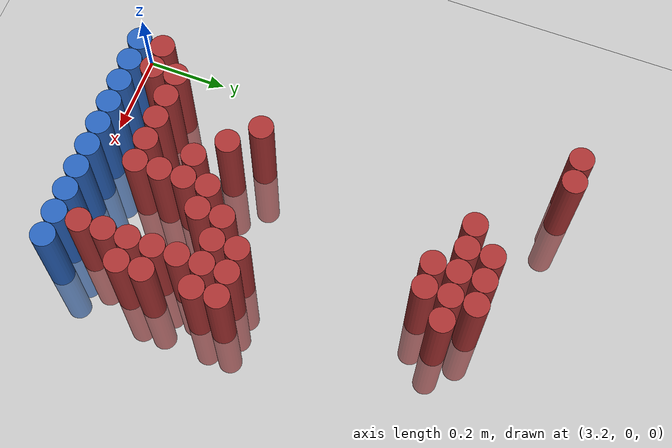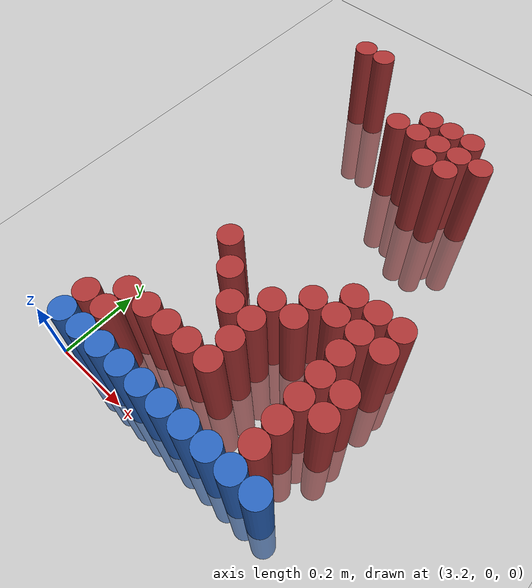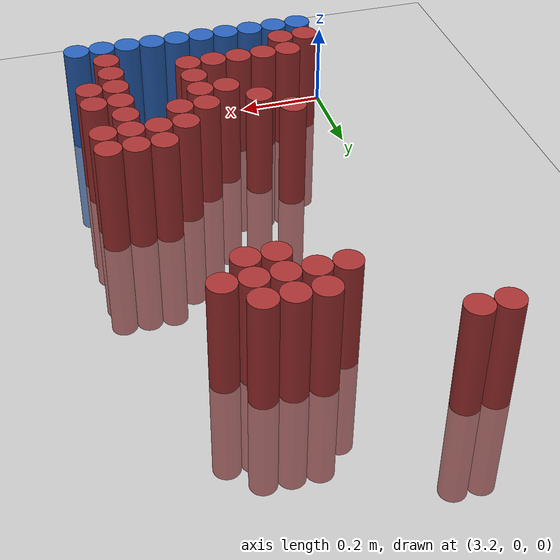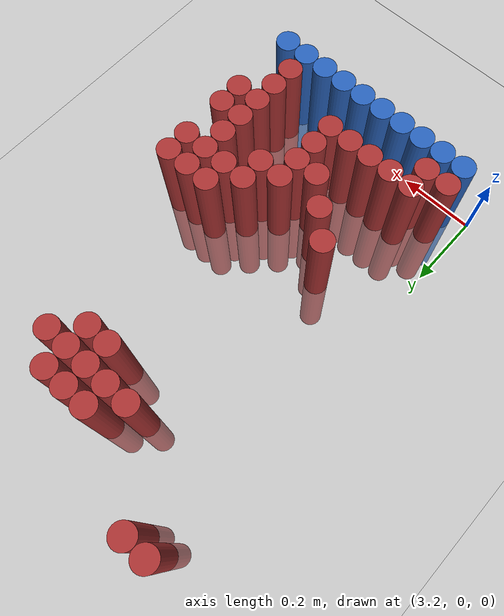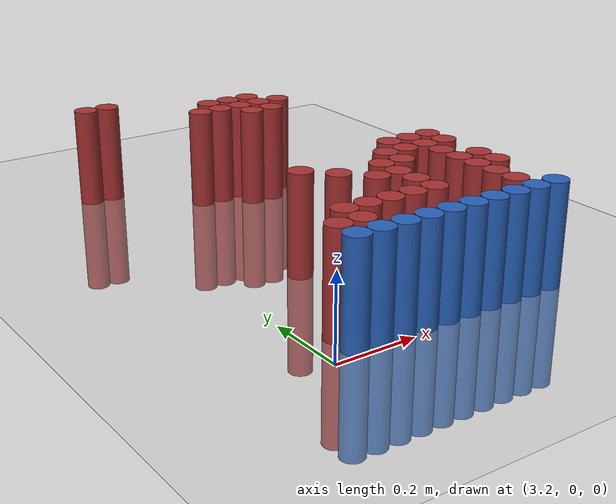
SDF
<sdf version="1.6">
 <world name="default">
  <model name="ground_plane">
   <static>1</static>
   <link name="link">
    <collision name="collision">
     <geometry><plane><normal>0 0 1</normal><size>100 100</size></plane></geometry>
     <surface><friction><ode><mu>100</mu><mu2>50</mu2></ode></friction></surface>
    </collision>
    <visual name="visual">
     <cast_shadows>0</cast_shadows>
     <geometry><plane><normal>0 0 1</normal><size>100 100</size></plane></geometry>
     <material>
      <script><uri>file://media/materials/scripts/gazebo.material</uri><name>Gazebo/Grey</name></script>
     </material>
    </visual>
   </link>
  </model>
  <model name="unit_cylinder_229">
   <static>1</static>
   <pose>3.210000 1.110000 0.000000 0.000000 0.000000 0.000000</pose>
   <link name="link">
    <inertial>
     <mass>1</mass>
     <inertia><ixx>0.145833</ixx><ixy>0</ixy><ixz>0</ixz><iyy>0.145833</iyy><iyz>0</iyz><izz>0.125</izz></inertia>
    </inertial>
    <collision name="collision">
     <geometry><cylinder><radius>0.030000</radius><length>0.5</length></cylinder></geometry>
    </collision>
    <visual name="visual">
     <geometry><cylinder><radius>0.030000</radius><length>0.5</length></cylinder></geometry>
     <material>
      <ambient>0.648000 0.192000 0.192000 1</ambient>
      <diffuse>0.648000 0.192000 0.192000 1</diffuse>
     </material>
     <material>
      <script><name>Gazebo/Grey</name><uri>file://media/materials/scripts/gazebo.material</uri></script>
     </material>
    </visual>
   </link>
  </model>
  <model name="unit_cylinder_230">
   <static>1</static>
   <pose>3.270000 1.110000 0.000000 0.000000 0.000000 0.000000</pose>
   <link name="link">
    <inertial>
     <mass>1</mass>
     <inertia><ixx>0.145833</ixx><ixy>0</ixy><ixz>0</ixz><iyy>0.145833</iyy><iyz>0</iyz><izz>0.125</izz></inertia>
    </inertial>
    <collision name="collision">
     <geometry><cylinder><radius>0.030000</radius><length>0.5</length></cylinder></geometry>
    </collision>
    <visual name="visual">
     <geometry><cylinder><radius>0.030000</radius><length>0.5</length></cylinder></geometry>
     <material>
      <ambient>0.648000 0.192000 0.192000 1</ambient>
      <diffuse>0.648000 0.192000 0.192000 1</diffuse>
     </material>
     <material>
      <script><name>Gazebo/Grey</name><uri>file://media/materials/scripts/gazebo.material</uri></script>
     </material>
    </visual>
   </link>
  </model>
  <model name="unit_cylinder_239">
   <static>1</static>
   <pose>3.510000 0.990000 0.000000 0.000000 0.000000 0.000000</pose>
   <link name="link">
    <inertial>
     <mass>1</mass>
     <inertia><ixx>0.145833</ixx><ixy>0</ixy><ixz>0</ixz><iyy>0.145833</iyy><iyz>0</iyz><izz>0.125</izz></inertia>
    </inertial>
    <collision name="collision">
     <geometry><cylinder><radius>0.030000</radius><length>0.5</length></cylinder></geometry>
    </collision>
    <visual name="visual">
     <geometry><cylinder><radius>0.030000</radius><length>0.5</length></cylinder></geometry>
     <material>
      <ambient>0.648000 0.192000 0.192000 1</ambient>
      <diffuse>0.648000 0.192000 0.192000 1</diffuse>
     </material>
     <material>
      <script><name>Gazebo/Grey</name><uri>file://media/materials/scripts/gazebo.material</uri></script>
     </material>
    </visual>
   </link>
  </model>
  <model name="unit_cylinder_240">
   <static>1</static>
   <pose>3.570000 0.990000 0.000000 0.000000 0.000000 0.000000</pose>
   <link name="link">
    <inertial>
     <mass>1</mass>
     <inertia><ixx>0.145833</ixx><ixy>0</ixy><ixz>0</ixz><iyy>0.145833</iyy><iyz>0</iyz><izz>0.125</izz></inertia>
    </inertial>
    <collision name="collision">
     <geometry><cylinder><radius>0.030000</radius><length>0.5</length></cylinder></geometry>
    </collision>
    <visual name="visual">
     <geometry><cylinder><radius>0.030000</radius><length>0.5</length></cylinder></geometry>
     <material>
      <ambient>0.648000 0.192000 0.192000 1</ambient>
      <diffuse>0.648000 0.192000 0.192000 1</diffuse>
     </material>
     <material>
      <script><name>Gazebo/Grey</name><uri>file://media/materials/scripts/gazebo.material</uri></script>
     </material>
    </visual>
   </link>
  </model>
  <model name="unit_cylinder_241">
   <static>1</static>
   <pose>3.630000 0.990000 0.000000 0.000000 0.000000 0.000000</pose>
   <link name="link">
    <inertial>
     <mass>1</mass>
     <inertia><ixx>0.145833</ixx><ixy>0</ixy><ixz>0</ixz><iyy>0.145833</iyy><iyz>0</iyz><izz>0.125</izz></inertia>
    </inertial>
    <collision name="collision">
     <geometry><cylinder><radius>0.030000</radius><length>0.5</length></cylinder></geometry>
    </collision>
    <visual name="visual">
     <geometry><cylinder><radius>0.030000</radius><length>0.5</length></cylinder></geometry>
     <material>
      <ambient>0.648000 0.192000 0.192000 1</ambient>
      <diffuse>0.648000 0.192000 0.192000 1</diffuse>
     </material>
     <material>
      <script><name>Gazebo/Grey</name><uri>file://media/materials/scripts/gazebo.material</uri></script>
     </material>
    </visual>
   </link>
  </model>
  <model name="unit_cylinder_245">
   <static>1</static>
   <pose>3.450000 0.930000 0.000000 0.000000 0.000000 0.000000</pose>
   <link name="link">
    <inertial>
     <mass>1</mass>
     <inertia><ixx>0.145833</ixx><ixy>0</ixy><ixz>0</ixz><iyy>0.145833</iyy><iyz>0</iyz><izz>0.125</izz></inertia>
    </inertial>
    <collision name="collision">
     <geometry><cylinder><radius>0.030000</radius><length>0.5</length></cylinder></geometry>
    </collision>
    <visual name="visual">
     <geometry><cylinder><radius>0.030000</radius><length>0.5</length></cylinder></geometry>
     <material>
      <ambient>0.648000 0.192000 0.192000 1</ambient>
      <diffuse>0.648000 0.192000 0.192000 1</diffuse>
     </material>
     <material>
      <script><name>Gazebo/Grey</name><uri>file://media/materials/scripts/gazebo.material</uri></script>
     </material>
    </visual>
   </link>
  </model>
  <model name="unit_cylinder_246">
   <static>1</static>
   <pose>3.510000 0.930000 0.000000 0.000000 0.000000 0.000000</pose>
   <link name="link">
    <inertial>
     <mass>1</mass>
     <inertia><ixx>0.145833</ixx><ixy>0</ixy><ixz>0</ixz><iyy>0.145833</iyy><iyz>0</iyz><izz>0.125</izz></inertia>
    </inertial>
    <collision name="collision">
     <geometry><cylinder><radius>0.030000</radius><length>0.5</length></cylinder></geometry>
    </collision>
    <visual name="visual">
     <geometry><cylinder><radius>0.030000</radius><length>0.5</length></cylinder></geometry>
     <material>
      <ambient>0.648000 0.192000 0.192000 1</ambient>
      <diffuse>0.648000 0.192000 0.192000 1</diffuse>
     </material>
     <material>
      <script><name>Gazebo/Grey</name><uri>file://media/materials/scripts/gazebo.material</uri></script>
     </material>
    </visual>
   </link>
  </model>
  <model name="unit_cylinder_247">
   <static>1</static>
   <pose>3.570000 0.930000 0.000000 0.000000 0.000000 0.000000</pose>
   <link name="link">
    <inertial>
     <mass>1</mass>
     <inertia><ixx>0.145833</ixx><ixy>0</ixy><ixz>0</ixz><iyy>0.145833</iyy><iyz>0</iyz><izz>0.125</izz></inertia>
    </inertial>
    <collision name="collision">
     <geometry><cylinder><radius>0.030000</radius><length>0.5</length></cylinder></geometry>
    </collision>
    <visual name="visual">
     <geometry><cylinder><radius>0.030000</radius><length>0.5</length></cylinder></geometry>
     <material>
      <ambient>0.648000 0.192000 0.192000 1</ambient>
      <diffuse>0.648000 0.192000 0.192000 1</diffuse>
     </material>
     <material>
      <script><name>Gazebo/Grey</name><uri>file://media/materials/scripts/gazebo.material</uri></script>
     </material>
    </visual>
   </link>
  </model>
  <model name="unit_cylinder_248">
   <static>1</static>
   <pose>3.630000 0.930000 0.000000 0.000000 0.000000 0.000000</pose>
   <link name="link">
    <inertial>
     <mass>1</mass>
     <inertia><ixx>0.145833</ixx><ixy>0</ixy><ixz>0</ixz><iyy>0.145833</iyy><iyz>0</iyz><izz>0.125</izz></inertia>
    </inertial>
    <collision name="collision">
     <geometry><cylinder><radius>0.030000</radius><length>0.5</length></cylinder></geometry>
    </collision>
    <visual name="visual">
     <geometry><cylinder><radius>0.030000</radius><length>0.5</length></cylinder></geometry>
     <material>
      <ambient>0.648000 0.192000 0.192000 1</ambient>
      <diffuse>0.648000 0.192000 0.192000 1</diffuse>
     </material>
     <material>
      <script><name>Gazebo/Grey</name><uri>file://media/materials/scripts/gazebo.material</uri></script>
     </material>
    </visual>
   </link>
  </model>
  <model name="unit_cylinder_249">
   <static>1</static>
   <pose>3.690000 0.930000 0.000000 0.000000 0.000000 0.000000</pose>
   <link name="link">
    <inertial>
     <mass>1</mass>
     <inertia><ixx>0.145833</ixx><ixy>0</ixy><ixz>0</ixz><iyy>0.145833</iyy><iyz>0</iyz><izz>0.125</izz></inertia>
    </inertial>
    <collision name="collision">
     <geometry><cylinder><radius>0.030000</radius><length>0.5</length></cylinder></geometry>
    </collision>
    <visual name="visual">
     <geometry><cylinder><radius>0.030000</radius><length>0.5</length></cylinder></geometry>
     <material>
      <ambient>0.648000 0.192000 0.192000 1</ambient>
      <diffuse>0.648000 0.192000 0.192000 1</diffuse>
     </material>
     <material>
      <script><name>Gazebo/Grey</name><uri>file://media/materials/scripts/gazebo.material</uri></script>
     </material>
    </visual>
   </link>
  </model>
  <model name="unit_cylinder_256">
   <static>1</static>
   <pose>3.570000 0.870000 0.000000 0.000000 0.000000 0.000000</pose>
   <link name="link">
    <inertial>
     <mass>1</mass>
     <inertia><ixx>0.145833</ixx><ixy>0</ixy><ixz>0</ixz><iyy>0.145833</iyy><iyz>0</iyz><izz>0.125</izz></inertia>
    </inertial>
    <collision name="collision">
     <geometry><cylinder><radius>0.030000</radius><length>0.5</length></cylinder></geometry>
    </collision>
    <visual name="visual">
     <geometry><cylinder><radius>0.030000</radius><length>0.5</length></cylinder></geometry>
     <material>
      <ambient>0.648000 0.192000 0.192000 1</ambient>
      <diffuse>0.648000 0.192000 0.192000 1</diffuse>
     </material>
     <material>
      <script><name>Gazebo/Grey</name><uri>file://media/materials/scripts/gazebo.material</uri></script>
     </material>
    </visual>
   </link>
  </model>
  <model name="unit_cylinder_257">
   <static>1</static>
   <pose>3.630000 0.870000 0.000000 0.000000 0.000000 0.000000</pose>
   <link name="link">
    <inertial>
     <mass>1</mass>
     <inertia><ixx>0.145833</ixx><ixy>0</ixy><ixz>0</ixz><iyy>0.145833</iyy><iyz>0</iyz><izz>0.125</izz></inertia>
    </inertial>
    <collision name="collision">
     <geometry><cylinder><radius>0.030000</radius><length>0.5</length></cylinder></geometry>
    </collision>
    <visual name="visual">
     <geometry><cylinder><radius>0.030000</radius><length>0.5</length></cylinder></geometry>
     <material>
      <ambient>0.648000 0.192000 0.192000 1</ambient>
      <diffuse>0.648000 0.192000 0.192000 1</diffuse>
     </material>
     <material>
      <script><name>Gazebo/Grey</name><uri>file://media/materials/scripts/gazebo.material</uri></script>
     </material>
    </visual>
   </link>
  </model>
  <model name="unit_cylinder_266">
   <static>1</static>
   <pose>3.690000 0.450000 0.000000 0.000000 0.000000 0.000000</pose>
   <link name="link">
    <inertial>
     <mass>1</mass>
     <inertia><ixx>0.145833</ixx><ixy>0</ixy><ixz>0</ixz><iyy>0.145833</iyy><iyz>0</iyz><izz>0.125</izz></inertia>
    </inertial>
    <collision name="collision">
     <geometry><cylinder><radius>0.030000</radius><length>0.5</length></cylinder></geometry>
    </collision>
    <visual name="visual">
     <geometry><cylinder><radius>0.030000</radius><length>0.5</length></cylinder></geometry>
     <material>
      <ambient>0.648000 0.192000 0.192000 1</ambient>
      <diffuse>0.648000 0.192000 0.192000 1</diffuse>
     </material>
     <material>
      <script><name>Gazebo/Grey</name><uri>file://media/materials/scripts/gazebo.material</uri></script>
     </material>
    </visual>
   </link>
  </model>
  <model name="unit_cylinder_267">
   <static>1</static>
   <pose>3.750000 0.450000 0.000000 0.000000 0.000000 0.000000</pose>
   <link name="link">
    <inertial>
     <mass>1</mass>
     <inertia><ixx>0.145833</ixx><ixy>0</ixy><ixz>0</ixz><iyy>0.145833</iyy><iyz>0</iyz><izz>0.125</izz></inertia>
    </inertial>
    <collision name="collision">
     <geometry><cylinder><radius>0.030000</radius><length>0.5</length></cylinder></geometry>
    </collision>
    <visual name="visual">
     <geometry><cylinder><radius>0.030000</radius><length>0.5</length></cylinder></geometry>
     <material>
      <ambient>0.648000 0.192000 0.192000 1</ambient>
      <diffuse>0.648000 0.192000 0.192000 1</diffuse>
     </material>
     <material>
      <script><name>Gazebo/Grey</name><uri>file://media/materials/scripts/gazebo.material</uri></script>
     </material>
    </visual>
   </link>
  </model>
  <model name="unit_cylinder_268">
   <static>1</static>
   <pose>3.810000 0.450000 0.000000 0.000000 0.000000 0.000000</pose>
   <link name="link">
    <inertial>
     <mass>1</mass>
     <inertia><ixx>0.145833</ixx><ixy>0</ixy><ixz>0</ixz><iyy>0.145833</iyy><iyz>0</iyz><izz>0.125</izz></inertia>
    </inertial>
    <collision name="collision">
     <geometry><cylinder><radius>0.030000</radius><length>0.5</length></cylinder></geometry>
    </collision>
    <visual name="visual">
     <geometry><cylinder><radius>0.030000</radius><length>0.5</length></cylinder></geometry>
     <material>
      <ambient>0.648000 0.192000 0.192000 1</ambient>
      <diffuse>0.648000 0.192000 0.192000 1</diffuse>
     </material>
     <material>
      <script><name>Gazebo/Grey</name><uri>file://media/materials/scripts/gazebo.material</uri></script>
     </material>
    </visual>
   </link>
  </model>
  <model name="unit_cylinder_271">
   <static>1</static>
   <pose>3.390000 0.390000 0.000000 0.000000 0.000000 0.000000</pose>
   <link name="link">
    <inertial>
     <mass>1</mass>
     <inertia><ixx>0.145833</ixx><ixy>0</ixy><ixz>0</ixz><iyy>0.145833</iyy><iyz>0</iyz><izz>0.125</izz></inertia>
    </inertial>
    <collision name="collision">
     <geometry><cylinder><radius>0.030000</radius><length>0.5</length></cylinder></geometry>
    </collision>
    <visual name="visual">
     <geometry><cylinder><radius>0.030000</radius><length>0.5</length></cylinder></geometry>
     <material>
      <ambient>0.648000 0.192000 0.192000 1</ambient>
      <diffuse>0.648000 0.192000 0.192000 1</diffuse>
     </material>
     <material>
      <script><name>Gazebo/Grey</name><uri>file://media/materials/scripts/gazebo.material</uri></script>
     </material>
    </visual>
   </link>
  </model>
  <model name="unit_cylinder_272">
   <static>1</static>
   <pose>3.630000 0.390000 0.000000 0.000000 0.000000 0.000000</pose>
   <link name="link">
    <inertial>
     <mass>1</mass>
     <inertia><ixx>0.145833</ixx><ixy>0</ixy><ixz>0</ixz><iyy>0.145833</iyy><iyz>0</iyz><izz>0.125</izz></inertia>
    </inertial>
    <collision name="collision">
     <geometry><cylinder><radius>0.030000</radius><length>0.5</length></cylinder></geometry>
    </collision>
    <visual name="visual">
     <geometry><cylinder><radius>0.030000</radius><length>0.5</length></cylinder></geometry>
     <material>
      <ambient>0.648000 0.192000 0.192000 1</ambient>
      <diffuse>0.648000 0.192000 0.192000 1</diffuse>
     </material>
     <material>
      <script><name>Gazebo/Grey</name><uri>file://media/materials/scripts/gazebo.material</uri></script>
     </material>
    </visual>
   </link>
  </model>
  <model name="unit_cylinder_273">
   <static>1</static>
   <pose>3.690000 0.390000 0.000000 0.000000 0.000000 0.000000</pose>
   <link name="link">
    <inertial>
     <mass>1</mass>
     <inertia><ixx>0.145833</ixx><ixy>0</ixy><ixz>0</ixz><iyy>0.145833</iyy><iyz>0</iyz><izz>0.125</izz></inertia>
    </inertial>
    <collision name="collision">
     <geometry><cylinder><radius>0.030000</radius><length>0.5</length></cylinder></geometry>
    </collision>
    <visual name="visual">
     <geometry><cylinder><radius>0.030000</radius><length>0.5</length></cylinder></geometry>
     <material>
      <ambient>0.648000 0.192000 0.192000 1</ambient>
      <diffuse>0.648000 0.192000 0.192000 1</diffuse>
     </material>
     <material>
      <script><name>Gazebo/Grey</name><uri>file://media/materials/scripts/gazebo.material</uri></script>
     </material>
    </visual>
   </link>
  </model>
  <model name="unit_cylinder_274">
   <static>1</static>
   <pose>3.750000 0.390000 0.000000 0.000000 0.000000 0.000000</pose>
   <link name="link">
    <inertial>
     <mass>1</mass>
     <inertia><ixx>0.145833</ixx><ixy>0</ixy><ixz>0</ixz><iyy>0.145833</iyy><iyz>0</iyz><izz>0.125</izz></inertia>
    </inertial>
    <collision name="collision">
     <geometry><cylinder><radius>0.030000</radius><length>0.5</length></cylinder></geometry>
    </collision>
    <visual name="visual">
     <geometry><cylinder><radius>0.030000</radius><length>0.5</length></cylinder></geometry>
     <material>
      <ambient>0.648000 0.192000 0.192000 1</ambient>
      <diffuse>0.648000 0.192000 0.192000 1</diffuse>
     </material>
     <material>
      <script><name>Gazebo/Grey</name><uri>file://media/materials/scripts/gazebo.material</uri></script>
     </material>
    </visual>
   </link>
  </model>
  <model name="unit_cylinder_275">
   <static>1</static>
   <pose>3.810000 0.390000 0.000000 0.000000 0.000000 0.000000</pose>
   <link name="link">
    <inertial>
     <mass>1</mass>
     <inertia><ixx>0.145833</ixx><ixy>0</ixy><ixz>0</ixz><iyy>0.145833</iyy><iyz>0</iyz><izz>0.125</izz></inertia>
    </inertial>
    <collision name="collision">
     <geometry><cylinder><radius>0.030000</radius><length>0.5</length></cylinder></geometry>
    </collision>
    <visual name="visual">
     <geometry><cylinder><radius>0.030000</radius><length>0.5</length></cylinder></geometry>
     <material>
      <ambient>0.648000 0.192000 0.192000 1</ambient>
      <diffuse>0.648000 0.192000 0.192000 1</diffuse>
     </material>
     <material>
      <script><name>Gazebo/Grey</name><uri>file://media/materials/scripts/gazebo.material</uri></script>
     </material>
    </visual>
   </link>
  </model>
  <model name="unit_cylinder_280">
   <static>1</static>
   <pose>3.450000 0.330000 0.000000 0.000000 0.000000 0.000000</pose>
   <link name="link">
    <inertial>
     <mass>1</mass>
     <inertia><ixx>0.145833</ixx><ixy>0</ixy><ixz>0</ixz><iyy>0.145833</iyy><iyz>0</iyz><izz>0.125</izz></inertia>
    </inertial>
    <collision name="collision">
     <geometry><cylinder><radius>0.030000</radius><length>0.5</length></cylinder></geometry>
    </collision>
    <visual name="visual">
     <geometry><cylinder><radius>0.030000</radius><length>0.5</length></cylinder></geometry>
     <material>
      <ambient>0.648000 0.192000 0.192000 1</ambient>
      <diffuse>0.648000 0.192000 0.192000 1</diffuse>
     </material>
     <material>
      <script><name>Gazebo/Grey</name><uri>file://media/materials/scripts/gazebo.material</uri></script>
     </material>
    </visual>
   </link>
  </model>
  <model name="unit_cylinder_281">
   <static>1</static>
   <pose>3.570000 0.330000 0.000000 0.000000 0.000000 0.000000</pose>
   <link name="link">
    <inertial>
     <mass>1</mass>
     <inertia><ixx>0.145833</ixx><ixy>0</ixy><ixz>0</ixz><iyy>0.145833</iyy><iyz>0</iyz><izz>0.125</izz></inertia>
    </inertial>
    <collision name="collision">
     <geometry><cylinder><radius>0.030000</radius><length>0.5</length></cylinder></geometry>
    </collision>
    <visual name="visual">
     <geometry><cylinder><radius>0.030000</radius><length>0.5</length></cylinder></geometry>
     <material>
      <ambient>0.648000 0.192000 0.192000 1</ambient>
      <diffuse>0.648000 0.192000 0.192000 1</diffuse>
     </material>
     <material>
      <script><name>Gazebo/Grey</name><uri>file://media/materials/scripts/gazebo.material</uri></script>
     </material>
    </visual>
   </link>
  </model>
  <model name="unit_cylinder_282">
   <static>1</static>
   <pose>3.630000 0.330000 0.000000 0.000000 0.000000 0.000000</pose>
   <link name="link">
    <inertial>
     <mass>1</mass>
     <inertia><ixx>0.145833</ixx><ixy>0</ixy><ixz>0</ixz><iyy>0.145833</iyy><iyz>0</iyz><izz>0.125</izz></inertia>
    </inertial>
    <collision name="collision">
     <geometry><cylinder><radius>0.030000</radius><length>0.5</length></cylinder></geometry>
    </collision>
    <visual name="visual">
     <geometry><cylinder><radius>0.030000</radius><length>0.5</length></cylinder></geometry>
     <material>
      <ambient>0.648000 0.192000 0.192000 1</ambient>
      <diffuse>0.648000 0.192000 0.192000 1</diffuse>
     </material>
     <material>
      <script><name>Gazebo/Grey</name><uri>file://media/materials/scripts/gazebo.material</uri></script>
     </material>
    </visual>
   </link>
  </model>
  <model name="unit_cylinder_283">
   <static>1</static>
   <pose>3.750000 0.330000 0.000000 0.000000 0.000000 0.000000</pose>
   <link name="link">
    <inertial>
     <mass>1</mass>
     <inertia><ixx>0.145833</ixx><ixy>0</ixy><ixz>0</ixz><iyy>0.145833</iyy><iyz>0</iyz><izz>0.125</izz></inertia>
    </inertial>
    <collision name="collision">
     <geometry><cylinder><radius>0.030000</radius><length>0.5</length></cylinder></geometry>
    </collision>
    <visual name="visual">
     <geometry><cylinder><radius>0.030000</radius><length>0.5</length></cylinder></geometry>
     <material>
      <ambient>0.648000 0.192000 0.192000 1</ambient>
      <diffuse>0.648000 0.192000 0.192000 1</diffuse>
     </material>
     <material>
      <script><name>Gazebo/Grey</name><uri>file://media/materials/scripts/gazebo.material</uri></script>
     </material>
    </visual>
   </link>
  </model>
  <model name="unit_cylinder_289">
   <static>1</static>
   <pose>3.510000 0.270000 0.000000 0.000000 0.000000 0.000000</pose>
   <link name="link">
    <inertial>
     <mass>1</mass>
     <inertia><ixx>0.145833</ixx><ixy>0</ixy><ixz>0</ixz><iyy>0.145833</iyy><iyz>0</iyz><izz>0.125</izz></inertia>
    </inertial>
    <collision name="collision">
     <geometry><cylinder><radius>0.030000</radius><length>0.5</length></cylinder></geometry>
    </collision>
    <visual name="visual">
     <geometry><cylinder><radius>0.030000</radius><length>0.5</length></cylinder></geometry>
     <material>
      <ambient>0.648000 0.192000 0.192000 1</ambient>
      <diffuse>0.648000 0.192000 0.192000 1</diffuse>
     </material>
     <material>
      <script><name>Gazebo/Grey</name><uri>file://media/materials/scripts/gazebo.material</uri></script>
     </material>
    </visual>
   </link>
  </model>
  <model name="unit_cylinder_290">
   <static>1</static>
   <pose>3.570000 0.270000 0.000000 0.000000 0.000000 0.000000</pose>
   <link name="link">
    <inertial>
     <mass>1</mass>
     <inertia><ixx>0.145833</ixx><ixy>0</ixy><ixz>0</ixz><iyy>0.145833</iyy><iyz>0</iyz><izz>0.125</izz></inertia>
    </inertial>
    <collision name="collision">
     <geometry><cylinder><radius>0.030000</radius><length>0.5</length></cylinder></geometry>
    </collision>
    <visual name="visual">
     <geometry><cylinder><radius>0.030000</radius><length>0.5</length></cylinder></geometry>
     <material>
      <ambient>0.648000 0.192000 0.192000 1</ambient>
      <diffuse>0.648000 0.192000 0.192000 1</diffuse>
     </material>
     <material>
      <script><name>Gazebo/Grey</name><uri>file://media/materials/scripts/gazebo.material</uri></script>
     </material>
    </visual>
   </link>
  </model>
  <model name="unit_cylinder_291">
   <static>1</static>
   <pose>3.750000 0.270000 0.000000 0.000000 0.000000 0.000000</pose>
   <link name="link">
    <inertial>
     <mass>1</mass>
     <inertia><ixx>0.145833</ixx><ixy>0</ixy><ixz>0</ixz><iyy>0.145833</iyy><iyz>0</iyz><izz>0.125</izz></inertia>
    </inertial>
    <collision name="collision">
     <geometry><cylinder><radius>0.030000</radius><length>0.5</length></cylinder></geometry>
    </collision>
    <visual name="visual">
     <geometry><cylinder><radius>0.030000</radius><length>0.5</length></cylinder></geometry>
     <material>
      <ambient>0.648000 0.192000 0.192000 1</ambient>
      <diffuse>0.648000 0.192000 0.192000 1</diffuse>
     </material>
     <material>
      <script><name>Gazebo/Grey</name><uri>file://media/materials/scripts/gazebo.material</uri></script>
     </material>
    </visual>
   </link>
  </model>
  <model name="unit_cylinder_292">
   <static>1</static>
   <pose>3.810000 0.270000 0.000000 0.000000 0.000000 0.000000</pose>
   <link name="link">
    <inertial>
     <mass>1</mass>
     <inertia><ixx>0.145833</ixx><ixy>0</ixy><ixz>0</ixz><iyy>0.145833</iyy><iyz>0</iyz><izz>0.125</izz></inertia>
    </inertial>
    <collision name="collision">
     <geometry><cylinder><radius>0.030000</radius><length>0.5</length></cylinder></geometry>
    </collision>
    <visual name="visual">
     <geometry><cylinder><radius>0.030000</radius><length>0.5</length></cylinder></geometry>
     <material>
      <ambient>0.648000 0.192000 0.192000 1</ambient>
      <diffuse>0.648000 0.192000 0.192000 1</diffuse>
     </material>
     <material>
      <script><name>Gazebo/Grey</name><uri>file://media/materials/scripts/gazebo.material</uri></script>
     </material>
    </visual>
   </link>
  </model>
  <model name="unit_cylinder_296">
   <static>1</static>
   <pose>3.570000 0.210000 0.000000 0.000000 0.000000 0.000000</pose>
   <link name="link">
    <inertial>
     <mass>1</mass>
     <inertia><ixx>0.145833</ixx><ixy>0</ixy><ixz>0</ixz><iyy>0.145833</iyy><iyz>0</iyz><izz>0.125</izz></inertia>
    </inertial>
    <collision name="collision">
     <geometry><cylinder><radius>0.030000</radius><length>0.5</length></cylinder></geometry>
    </collision>
    <visual name="visual">
     <geometry><cylinder><radius>0.030000</radius><length>0.5</length></cylinder></geometry>
     <material>
      <ambient>0.648000 0.192000 0.192000 1</ambient>
      <diffuse>0.648000 0.192000 0.192000 1</diffuse>
     </material>
     <material>
      <script><name>Gazebo/Grey</name><uri>file://media/materials/scripts/gazebo.material</uri></script>
     </material>
    </visual>
   </link>
  </model>
  <model name="unit_cylinder_297">
   <static>1</static>
   <pose>3.750000 0.210000 0.000000 0.000000 0.000000 0.000000</pose>
   <link name="link">
    <inertial>
     <mass>1</mass>
     <inertia><ixx>0.145833</ixx><ixy>0</ixy><ixz>0</ixz><iyy>0.145833</iyy><iyz>0</iyz><izz>0.125</izz></inertia>
    </inertial>
    <collision name="collision">
     <geometry><cylinder><radius>0.030000</radius><length>0.5</length></cylinder></geometry>
    </collision>
    <visual name="visual">
     <geometry><cylinder><radius>0.030000</radius><length>0.5</length></cylinder></geometry>
     <material>
      <ambient>0.648000 0.192000 0.192000 1</ambient>
      <diffuse>0.648000 0.192000 0.192000 1</diffuse>
     </material>
     <material>
      <script><name>Gazebo/Grey</name><uri>file://media/materials/scripts/gazebo.material</uri></script>
     </material>
    </visual>
   </link>
  </model>
  <model name="unit_cylinder_298">
   <static>1</static>
   <pose>3.810000 0.210000 0.000000 0.000000 0.000000 0.000000</pose>
   <link name="link">
    <inertial>
     <mass>1</mass>
     <inertia><ixx>0.145833</ixx><ixy>0</ixy><ixz>0</ixz><iyy>0.145833</iyy><iyz>0</iyz><izz>0.125</izz></inertia>
    </inertial>
    <collision name="collision">
     <geometry><cylinder><radius>0.030000</radius><length>0.5</length></cylinder></geometry>
    </collision>
    <visual name="visual">
     <geometry><cylinder><radius>0.030000</radius><length>0.5</length></cylinder></geometry>
     <material>
      <ambient>0.648000 0.192000 0.192000 1</ambient>
      <diffuse>0.648000 0.192000 0.192000 1</diffuse>
     </material>
     <material>
      <script><name>Gazebo/Grey</name><uri>file://media/materials/scripts/gazebo.material</uri></script>
     </material>
    </visual>
   </link>
  </model>
  <model name="unit_cylinder_302">
   <static>1</static>
   <pose>3.330000 0.150000 0.000000 0.000000 0.000000 0.000000</pose>
   <link name="link">
    <inertial>
     <mass>1</mass>
     <inertia><ixx>0.145833</ixx><ixy>0</ixy><ixz>0</ixz><iyy>0.145833</iyy><iyz>0</iyz><izz>0.125</izz></inertia>
    </inertial>
    <collision name="collision">
     <geometry><cylinder><radius>0.030000</radius><length>0.5</length></cylinder></geometry>
    </collision>
    <visual name="visual">
     <geometry><cylinder><radius>0.030000</radius><length>0.5</length></cylinder></geometry>
     <material>
      <ambient>0.648000 0.192000 0.192000 1</ambient>
      <diffuse>0.648000 0.192000 0.192000 1</diffuse>
     </material>
     <material>
      <script><name>Gazebo/Grey</name><uri>file://media/materials/scripts/gazebo.material</uri></script>
     </material>
    </visual>
   </link>
  </model>
  <model name="unit_cylinder_303">
   <static>1</static>
   <pose>3.390000 0.150000 0.000000 0.000000 0.000000 0.000000</pose>
   <link name="link">
    <inertial>
     <mass>1</mass>
     <inertia><ixx>0.145833</ixx><ixy>0</ixy><ixz>0</ixz><iyy>0.145833</iyy><iyz>0</iyz><izz>0.125</izz></inertia>
    </inertial>
    <collision name="collision">
     <geometry><cylinder><radius>0.030000</radius><length>0.5</length></cylinder></geometry>
    </collision>
    <visual name="visual">
     <geometry><cylinder><radius>0.030000</radius><length>0.5</length></cylinder></geometry>
     <material>
      <ambient>0.648000 0.192000 0.192000 1</ambient>
      <diffuse>0.648000 0.192000 0.192000 1</diffuse>
     </material>
     <material>
      <script><name>Gazebo/Grey</name><uri>file://media/materials/scripts/gazebo.material</uri></script>
     </material>
    </visual>
   </link>
  </model>
  <model name="unit_cylinder_304">
   <static>1</static>
   <pose>3.450000 0.150000 0.000000 0.000000 0.000000 0.000000</pose>
   <link name="link">
    <inertial>
     <mass>1</mass>
     <inertia><ixx>0.145833</ixx><ixy>0</ixy><ixz>0</ixz><iyy>0.145833</iyy><iyz>0</iyz><izz>0.125</izz></inertia>
    </inertial>
    <collision name="collision">
     <geometry><cylinder><radius>0.030000</radius><length>0.5</length></cylinder></geometry>
    </collision>
    <visual name="visual">
     <geometry><cylinder><radius>0.030000</radius><length>0.5</length></cylinder></geometry>
     <material>
      <ambient>0.648000 0.192000 0.192000 1</ambient>
      <diffuse>0.648000 0.192000 0.192000 1</diffuse>
     </material>
     <material>
      <script><name>Gazebo/Grey</name><uri>file://media/materials/scripts/gazebo.material</uri></script>
     </material>
    </visual>
   </link>
  </model>
  <model name="unit_cylinder_305">
   <static>1</static>
   <pose>3.510000 0.150000 0.000000 0.000000 0.000000 0.000000</pose>
   <link name="link">
    <inertial>
     <mass>1</mass>
     <inertia><ixx>0.145833</ixx><ixy>0</ixy><ixz>0</ixz><iyy>0.145833</iyy><iyz>0</iyz><izz>0.125</izz></inertia>
    </inertial>
    <collision name="collision">
     <geometry><cylinder><radius>0.030000</radius><length>0.5</length></cylinder></geometry>
    </collision>
    <visual name="visual">
     <geometry><cylinder><radius>0.030000</radius><length>0.5</length></cylinder></geometry>
     <material>
      <ambient>0.648000 0.192000 0.192000 1</ambient>
      <diffuse>0.648000 0.192000 0.192000 1</diffuse>
     </material>
     <material>
      <script><name>Gazebo/Grey</name><uri>file://media/materials/scripts/gazebo.material</uri></script>
     </material>
    </visual>
   </link>
  </model>
  <model name="unit_cylinder_306">
   <static>1</static>
   <pose>3.570000 0.150000 0.000000 0.000000 0.000000 0.000000</pose>
   <link name="link">
    <inertial>
     <mass>1</mass>
     <inertia><ixx>0.145833</ixx><ixy>0</ixy><ixz>0</ixz><iyy>0.145833</iyy><iyz>0</iyz><izz>0.125</izz></inertia>
    </inertial>
    <collision name="collision">
     <geometry><cylinder><radius>0.030000</radius><length>0.5</length></cylinder></geometry>
    </collision>
    <visual name="visual">
     <geometry><cylinder><radius>0.030000</radius><length>0.5</length></cylinder></geometry>
     <material>
      <ambient>0.648000 0.192000 0.192000 1</ambient>
      <diffuse>0.648000 0.192000 0.192000 1</diffuse>
     </material>
     <material>
      <script><name>Gazebo/Grey</name><uri>file://media/materials/scripts/gazebo.material</uri></script>
     </material>
    </visual>
   </link>
  </model>
  <model name="unit_cylinder_307">
   <static>1</static>
   <pose>3.750000 0.150000 0.000000 0.000000 0.000000 0.000000</pose>
   <link name="link">
    <inertial>
     <mass>1</mass>
     <inertia><ixx>0.145833</ixx><ixy>0</ixy><ixz>0</ixz><iyy>0.145833</iyy><iyz>0</iyz><izz>0.125</izz></inertia>
    </inertial>
    <collision name="collision">
     <geometry><cylinder><radius>0.030000</radius><length>0.5</length></cylinder></geometry>
    </collision>
    <visual name="visual">
     <geometry><cylinder><radius>0.030000</radius><length>0.5</length></cylinder></geometry>
     <material>
      <ambient>0.648000 0.192000 0.192000 1</ambient>
      <diffuse>0.648000 0.192000 0.192000 1</diffuse>
     </material>
     <material>
      <script><name>Gazebo/Grey</name><uri>file://media/materials/scripts/gazebo.material</uri></script>
     </material>
    </visual>
   </link>
  </model>
  <model name="unit_cylinder_319">
   <static>1</static>
   <pose>3.270000 0.090000 0.000000 0.000000 0.000000 0.000000</pose>
   <link name="link">
    <inertial>
     <mass>1</mass>
     <inertia><ixx>0.145833</ixx><ixy>0</ixy><ixz>0</ixz><iyy>0.145833</iyy><iyz>0</iyz><izz>0.125</izz></inertia>
    </inertial>
    <collision name="collision">
     <geometry><cylinder><radius>0.030000</radius><length>0.5</length></cylinder></geometry>
    </collision>
    <visual name="visual">
     <geometry><cylinder><radius>0.030000</radius><length>0.5</length></cylinder></geometry>
     <material>
      <ambient>0.648000 0.192000 0.192000 1</ambient>
      <diffuse>0.648000 0.192000 0.192000 1</diffuse>
     </material>
     <material>
      <script><name>Gazebo/Grey</name><uri>file://media/materials/scripts/gazebo.material</uri></script>
     </material>
    </visual>
   </link>
  </model>
  <model name="unit_cylinder_320">
   <static>1</static>
   <pose>3.330000 0.090000 0.000000 0.000000 0.000000 0.000000</pose>
   <link name="link">
    <inertial>
     <mass>1</mass>
     <inertia><ixx>0.145833</ixx><ixy>0</ixy><ixz>0</ixz><iyy>0.145833</iyy><iyz>0</iyz><izz>0.125</izz></inertia>
    </inertial>
    <collision name="collision">
     <geometry><cylinder><radius>0.030000</radius><length>0.5</length></cylinder></geometry>
    </collision>
    <visual name="visual">
     <geometry><cylinder><radius>0.030000</radius><length>0.5</length></cylinder></geometry>
     <material>
      <ambient>0.648000 0.192000 0.192000 1</ambient>
      <diffuse>0.648000 0.192000 0.192000 1</diffuse>
     </material>
     <material>
      <script><name>Gazebo/Grey</name><uri>file://media/materials/scripts/gazebo.material</uri></script>
     </material>
    </visual>
   </link>
  </model>
  <model name="unit_cylinder_321">
   <static>1</static>
   <pose>3.750000 0.090000 0.000000 0.000000 0.000000 0.000000</pose>
   <link name="link">
    <inertial>
     <mass>1</mass>
     <inertia><ixx>0.145833</ixx><ixy>0</ixy><ixz>0</ixz><iyy>0.145833</iyy><iyz>0</iyz><izz>0.125</izz></inertia>
    </inertial>
    <collision name="collision">
     <geometry><cylinder><radius>0.030000</radius><length>0.5</length></cylinder></geometry>
    </collision>
    <visual name="visual">
     <geometry><cylinder><radius>0.030000</radius><length>0.5</length></cylinder></geometry>
     <material>
      <ambient>0.648000 0.192000 0.192000 1</ambient>
      <diffuse>0.648000 0.192000 0.192000 1</diffuse>
     </material>
     <material>
      <script><name>Gazebo/Grey</name><uri>file://media/materials/scripts/gazebo.material</uri></script>
     </material>
    </visual>
   </link>
  </model>
  <model name="unit_cylinder_342">
   <static>1</static>
   <pose>3.270000 0.030000 0.000000 0.000000 0.000000 0.000000</pose>
   <link name="link">
    <inertial>
     <mass>1</mass>
     <inertia><ixx>0.145833</ixx><ixy>0</ixy><ixz>0</ixz><iyy>0.145833</iyy><iyz>0</iyz><izz>0.125</izz></inertia>
    </inertial>
    <collision name="collision">
     <geometry><cylinder><radius>0.030000</radius><length>0.5</length></cylinder></geometry>
    </collision>
    <visual name="visual">
     <geometry><cylinder><radius>0.030000</radius><length>0.5</length></cylinder></geometry>
     <material>
      <ambient>0.152000 0.379000 0.720000 1</ambient>
      <diffuse>0.152000 0.379000 0.720000 1</diffuse>
     </material>
     <material>
      <script><name>Gazebo/Grey</name><uri>file://media/materials/scripts/gazebo.material</uri></script>
     </material>
    </visual>
   </link>
  </model>
  <model name="unit_cylinder_343">
   <static>1</static>
   <pose>3.330000 0.030000 0.000000 0.000000 0.000000 0.000000</pose>
   <link name="link">
    <inertial>
     <mass>1</mass>
     <inertia><ixx>0.145833</ixx><ixy>0</ixy><ixz>0</ixz><iyy>0.145833</iyy><iyz>0</iyz><izz>0.125</izz></inertia>
    </inertial>
    <collision name="collision">
     <geometry><cylinder><radius>0.030000</radius><length>0.5</length></cylinder></geometry>
    </collision>
    <visual name="visual">
     <geometry><cylinder><radius>0.030000</radius><length>0.5</length></cylinder></geometry>
     <material>
      <ambient>0.152000 0.379000 0.720000 1</ambient>
      <diffuse>0.152000 0.379000 0.720000 1</diffuse>
     </material>
     <material>
      <script><name>Gazebo/Grey</name><uri>file://media/materials/scripts/gazebo.material</uri></script>
     </material>
    </visual>
   </link>
  </model>
  <model name="unit_cylinder_344">
   <static>1</static>
   <pose>3.390000 0.030000 0.000000 0.000000 0.000000 0.000000</pose>
   <link name="link">
    <inertial>
     <mass>1</mass>
     <inertia><ixx>0.145833</ixx><ixy>0</ixy><ixz>0</ixz><iyy>0.145833</iyy><iyz>0</iyz><izz>0.125</izz></inertia>
    </inertial>
    <collision name="collision">
     <geometry><cylinder><radius>0.030000</radius><length>0.5</length></cylinder></geometry>
    </collision>
    <visual name="visual">
     <geometry><cylinder><radius>0.030000</radius><length>0.5</length></cylinder></geometry>
     <material>
      <ambient>0.152000 0.379000 0.720000 1</ambient>
      <diffuse>0.152000 0.379000 0.720000 1</diffuse>
     </material>
     <material>
      <script><name>Gazebo/Grey</name><uri>file://media/materials/scripts/gazebo.material</uri></script>
     </material>
    </visual>
   </link>
  </model>
  <model name="unit_cylinder_345">
   <static>1</static>
   <pose>3.450000 0.030000 0.000000 0.000000 0.000000 0.000000</pose>
   <link name="link">
    <inertial>
     <mass>1</mass>
     <inertia><ixx>0.145833</ixx><ixy>0</ixy><ixz>0</ixz><iyy>0.145833</iyy><iyz>0</iyz><izz>0.125</izz></inertia>
    </inertial>
    <collision name="collision">
     <geometry><cylinder><radius>0.030000</radius><length>0.5</length></cylinder></geometry>
    </collision>
    <visual name="visual">
     <geometry><cylinder><radius>0.030000</radius><length>0.5</length></cylinder></geometry>
     <material>
      <ambient>0.152000 0.379000 0.720000 1</ambient>
      <diffuse>0.152000 0.379000 0.720000 1</diffuse>
     </material>
     <material>
      <script><name>Gazebo/Grey</name><uri>file://media/materials/scripts/gazebo.material</uri></script>
     </material>
    </visual>
   </link>
  </model>
  <model name="unit_cylinder_346">
   <static>1</static>
   <pose>3.510000 0.030000 0.000000 0.000000 0.000000 0.000000</pose>
   <link name="link">
    <inertial>
     <mass>1</mass>
     <inertia><ixx>0.145833</ixx><ixy>0</ixy><ixz>0</ixz><iyy>0.145833</iyy><iyz>0</iyz><izz>0.125</izz></inertia>
    </inertial>
    <collision name="collision">
     <geometry><cylinder><radius>0.030000</radius><length>0.5</length></cylinder></geometry>
    </collision>
    <visual name="visual">
     <geometry><cylinder><radius>0.030000</radius><length>0.5</length></cylinder></geometry>
     <material>
      <ambient>0.152000 0.379000 0.720000 1</ambient>
      <diffuse>0.152000 0.379000 0.720000 1</diffuse>
     </material>
     <material>
      <script><name>Gazebo/Grey</name><uri>file://media/materials/scripts/gazebo.material</uri></script>
     </material>
    </visual>
   </link>
  </model>
  <model name="unit_cylinder_347">
   <static>1</static>
   <pose>3.570000 0.030000 0.000000 0.000000 0.000000 0.000000</pose>
   <link name="link">
    <inertial>
     <mass>1</mass>
     <inertia><ixx>0.145833</ixx><ixy>0</ixy><ixz>0</ixz><iyy>0.145833</iyy><iyz>0</iyz><izz>0.125</izz></inertia>
    </inertial>
    <collision name="collision">
     <geometry><cylinder><radius>0.030000</radius><length>0.5</length></cylinder></geometry>
    </collision>
    <visual name="visual">
     <geometry><cylinder><radius>0.030000</radius><length>0.5</length></cylinder></geometry>
     <material>
      <ambient>0.152000 0.379000 0.720000 1</ambient>
      <diffuse>0.152000 0.379000 0.720000 1</diffuse>
     </material>
     <material>
      <script><name>Gazebo/Grey</name><uri>file://media/materials/scripts/gazebo.material</uri></script>
     </material>
    </visual>
   </link>
  </model>
  <model name="unit_cylinder_348">
   <static>1</static>
   <pose>3.630000 0.030000 0.000000 0.000000 0.000000 0.000000</pose>
   <link name="link">
    <inertial>
     <mass>1</mass>
     <inertia><ixx>0.145833</ixx><ixy>0</ixy><ixz>0</ixz><iyy>0.145833</iyy><iyz>0</iyz><izz>0.125</izz></inertia>
    </inertial>
    <collision name="collision">
     <geometry><cylinder><radius>0.030000</radius><length>0.5</length></cylinder></geometry>
    </collision>
    <visual name="visual">
     <geometry><cylinder><radius>0.030000</radius><length>0.5</length></cylinder></geometry>
     <material>
      <ambient>0.152000 0.379000 0.720000 1</ambient>
      <diffuse>0.152000 0.379000 0.720000 1</diffuse>
     </material>
     <material>
      <script><name>Gazebo/Grey</name><uri>file://media/materials/scripts/gazebo.material</uri></script>
     </material>
    </visual>
   </link>
  </model>
  <model name="unit_cylinder_349">
   <static>1</static>
   <pose>3.690000 0.030000 0.000000 0.000000 0.000000 0.000000</pose>
   <link name="link">
    <inertial>
     <mass>1</mass>
     <inertia><ixx>0.145833</ixx><ixy>0</ixy><ixz>0</ixz><iyy>0.145833</iyy><iyz>0</iyz><izz>0.125</izz></inertia>
    </inertial>
    <collision name="collision">
     <geometry><cylinder><radius>0.030000</radius><length>0.5</length></cylinder></geometry>
    </collision>
    <visual name="visual">
     <geometry><cylinder><radius>0.030000</radius><length>0.5</length></cylinder></geometry>
     <material>
      <ambient>0.152000 0.379000 0.720000 1</ambient>
      <diffuse>0.152000 0.379000 0.720000 1</diffuse>
     </material>
     <material>
      <script><name>Gazebo/Grey</name><uri>file://media/materials/scripts/gazebo.material</uri></script>
     </material>
    </visual>
   </link>
  </model>
  <model name="unit_cylinder_350">
   <static>1</static>
   <pose>3.750000 0.030000 0.000000 0.000000 0.000000 0.000000</pose>
   <link name="link">
    <inertial>
     <mass>1</mass>
     <inertia><ixx>0.145833</ixx><ixy>0</ixy><ixz>0</ixz><iyy>0.145833</iyy><iyz>0</iyz><izz>0.125</izz></inertia>
    </inertial>
    <collision name="collision">
     <geometry><cylinder><radius>0.030000</radius><length>0.5</length></cylinder></geometry>
    </collision>
    <visual name="visual">
     <geometry><cylinder><radius>0.030000</radius><length>0.5</length></cylinder></geometry>
     <material>
      <ambient>0.152000 0.379000 0.720000 1</ambient>
      <diffuse>0.152000 0.379000 0.720000 1</diffuse>
     </material>
     <material>
      <script><name>Gazebo/Grey</name><uri>file://media/materials/scripts/gazebo.material</uri></script>
     </material>
    </visual>
   </link>
  </model>
  <model name="unit_cylinder_351">
   <static>1</static>
   <pose>3.810000 0.030000 0.000000 0.000000 0.000000 0.000000</pose>
   <link name="link">
    <inertial>
     <mass>1</mass>
     <inertia><ixx>0.145833</ixx><ixy>0</ixy><ixz>0</ixz><iyy>0.145833</iyy><iyz>0</iyz><izz>0.125</izz></inertia>
    </inertial>
    <collision name="collision">
     <geometry><cylinder><radius>0.030000</radius><length>0.5</length></cylinder></geometry>
    </collision>
    <visual name="visual">
     <geometry><cylinder><radius>0.030000</radius><length>0.5</length></cylinder></geometry>
     <material>
      <ambient>0.152000 0.379000 0.720000 1</ambient>
      <diffuse>0.152000 0.379000 0.720000 1</diffuse>
     </material>
     <material>
      <script><name>Gazebo/Grey</name><uri>file://media/materials/scripts/gazebo.material</uri></script>
     </material>
    </visual>
   </link>
  </model>
 </world>
</sdf>
